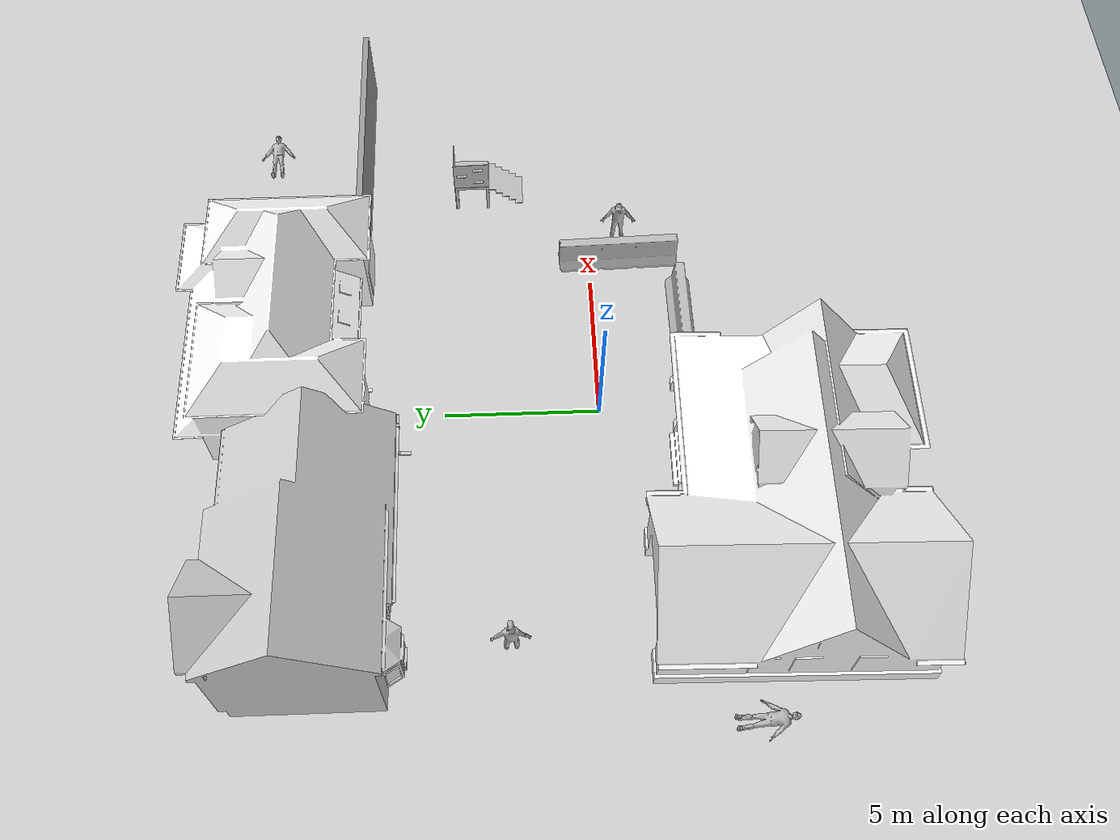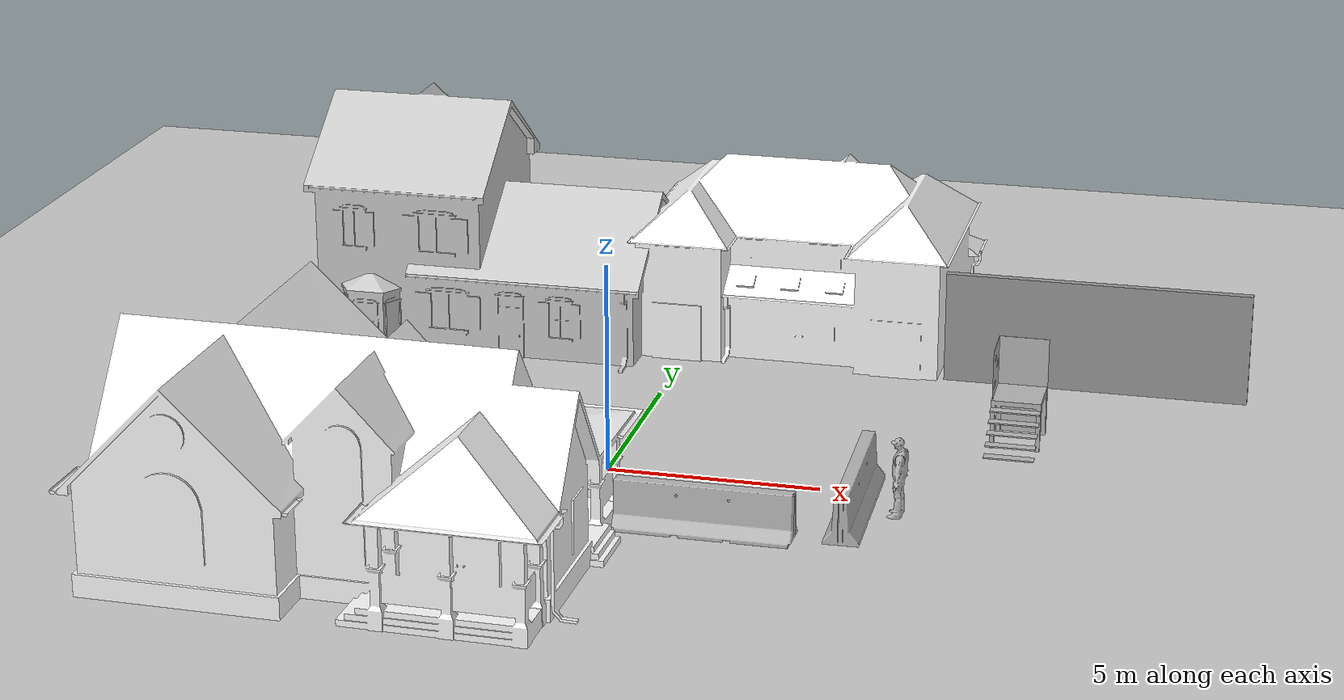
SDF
<sdf version="1.6">
 <world name="default">
  <light name="sun" type="directional">
   <pose>0 0 10 0 -0 0</pose>
   <diffuse>0.8 0.8 0.8 1</diffuse>
   <specular>0.2 0.2 0.2 1</specular>
   <attenuation>
    <range>1000</range>
    <constant>0.9</constant>
    <linear>0.01</linear>
    <quadratic>0.001</quadratic>
   </attenuation>
   <direction>-0.5 0.1 -0.9</direction>
  </light>
  <model name="ground_plane">
   <static>1</static>
   <link name="link">
    <collision name="collision">
     <geometry><plane><normal>0 0 1</normal><size>100 100</size></plane></geometry>
     <surface><friction><ode><mu>100</mu><mu2>50</mu2></ode></friction></surface>
    </collision>
    <visual name="visual">
     <cast_shadows>0</cast_shadows>
     <geometry><plane><normal>0 0 1</normal><size>100 100</size></plane></geometry>
     <material>
      <script><uri>file://media/materials/scripts/gazebo.material</uri><name>Gazebo/Grey</name></script>
     </material>
    </visual>
    <velocity_decay><linear>0</linear><angular>0</angular></velocity_decay>
   </link>
  </model>
  <physics name="default_physics" default="0" type="ode">
   <max_step_size>0.001</max_step_size>
   <real_time_factor>1</real_time_factor>
   <real_time_update_rate>1000</real_time_update_rate>
  </physics>
  <scene><ambient>0.4 0.4 0.4 1</ambient><background>0.7 0.7 0.7 1</background><shadows>1</shadows></scene>
  <model name="House 3">
   <static>1</static>
   <link name="link">
    <collision name="collision">
     <geometry><mesh><uri>model://house_3/meshes/house_3.dae</uri><scale>1 1 1</scale></mesh></geometry>
    </collision>
    <visual name="visual">
     <geometry><mesh><uri>model://house_3/meshes/house_3.dae</uri><scale>1 1 1</scale></mesh></geometry>
     <material>
      <script>
       <uri>model://house_3/materials/scripts</uri>
       <uri>model://house_3/materials/textures</uri>
       <uri>model://house_1/materials/textures</uri>
       <name>House_3/Diffuse</name>
      </script>
      <shader type="normal_map_object_space">
       <normal_map>model://house_1/materials/textures/House_1_Normal.png</normal_map>
      </shader>
     </material>
    </visual>
    <velocity_decay><linear>0</linear><angular>0</angular></velocity_decay>
   </link>
   <pose>-5 9 0 0 -0 0</pose>
  </model>
  <model name="House 2">
   <static>1</static>
   <link name="link">
    <collision name="collision">
     <geometry><mesh><uri>model://house_2/meshes/house_2.dae</uri><scale>1 1 1</scale></mesh></geometry>
    </collision>
    <visual name="visual">
     <geometry><mesh><uri>model://house_2/meshes/house_2.dae</uri><scale>1 1 1</scale></mesh></geometry>
     <material>
      <script>
       <uri>model://house_2/materials/scripts</uri>
       <uri>model://house_2/materials/textures</uri>
       <uri>model://house_1/materials/textures</uri>
       <name>House_2/Diffuse</name>
      </script>
      <shader type="normal_map_object_space">
       <normal_map>model://house_1/materials/textures/House_1_Normal.png</normal_map>
      </shader>
     </material>
    </visual>
    <velocity_decay><linear>0</linear><angular>0</angular></velocity_decay>
   </link>
   <pose>2 10 0 0 -0 0</pose>
  </model>
  <model name="House 1">
   <static>1</static>
   <link name="link">
    <collision name="collision">
     <geometry><mesh><uri>model://house_1/meshes/house_1.dae</uri><scale>1 1 1</scale></mesh></geometry>
    </collision>
    <visual name="visual">
     <geometry><mesh><uri>model://house_1/meshes/house_1.dae</uri><scale>1 1 1</scale></mesh></geometry>
     <material>
      <script>
       <uri>model://house_1/materials/scripts</uri>
       <uri>model://house_1/materials/textures</uri>
       <name>House_1/Diffuse</name>
      </script>
      <shader type="normal_map_object_space"><normal_map>House_1_Normal.png</normal_map></shader>
     </material>
    </visual>
    <velocity_decay><linear>0</linear><angular>0</angular></velocity_decay>
   </link>
   <pose>-4.18156 -5.60557 0 0 -0 3.12318</pose>
  </model>
  <model name="jersey_barrier">
   <static>1</static>
   <link name="link">
    <visual name="visual">
     <geometry>
      <mesh><uri>model://jersey_barrier/meshes/jersey_barrier.dae</uri><scale>1 1 1</scale></mesh>
     </geometry>
    </visual>
    <collision name="upright">
     <pose>0 0 0.5715 0 -0 0</pose>
     <geometry><box><size>4.06542 0.3063 1.143</size></box></geometry>
    </collision>
    <collision name="base">
     <pose>0 0 0.032258 0 -0 0</pose>
     <geometry><box><size>4.06542 0.8107 0.064516</size></box></geometry>
    </collision>
    <collision name="base2">
     <pose>0 0 0.1 0 -0 0</pose>
     <geometry><box><size>4.06542 0.65 0.1</size></box></geometry>
    </collision>
    <collision name="base3">
     <pose>0 0 0.2 0 -0 0</pose>
     <geometry><box><size>4.06542 0.5 0.1</size></box></geometry>
    </collision>
    <collision name="left-angle">
     <pose>0 -0.224 0.2401 0.9 -0 0</pose>
     <geometry><box><size>4.06542 0.5 0.064516</size></box></geometry>
    </collision>
    <collision name="right-angle">
     <pose>0 0.224 0.2401 -0.9 0 0</pose>
     <geometry><box><size>4.06542 0.5 0.064516</size></box></geometry>
    </collision>
    <velocity_decay><linear>0</linear><angular>0</angular></velocity_decay>
   </link>
   <pose>3 -3 0 0 -0 0</pose>
  </model>
  <model name="jersey_barrier_0">
   <static>1</static>
   <link name="link">
    <visual name="visual">
     <geometry>
      <mesh><uri>model://jersey_barrier/meshes/jersey_barrier.dae</uri><scale>1 1 1</scale></mesh>
     </geometry>
    </visual>
    <collision name="upright">
     <pose>0 0 0.5715 0 -0 0</pose>
     <geometry><box><size>4.06542 0.3063 1.143</size></box></geometry>
    </collision>
    <collision name="base">
     <pose>0 0 0.032258 0 -0 0</pose>
     <geometry><box><size>4.06542 0.8107 0.064516</size></box></geometry>
    </collision>
    <collision name="base2">
     <pose>0 0 0.1 0 -0 0</pose>
     <geometry><box><size>4.06542 0.65 0.1</size></box></geometry>
    </collision>
    <collision name="base3">
     <pose>0 0 0.2 0 -0 0</pose>
     <geometry><box><size>4.06542 0.5 0.1</size></box></geometry>
    </collision>
    <collision name="left-angle">
     <pose>0 -0.224 0.2401 0.9 -0 0</pose>
     <geometry><box><size>4.06542 0.5 0.064516</size></box></geometry>
    </collision>
    <collision name="right-angle">
     <pose>0 0.224 0.2401 -0.9 0 0</pose>
     <geometry><box><size>4.06542 0.5 0.064516</size></box></geometry>
    </collision>
    <velocity_decay><linear>0</linear><angular>0</angular></velocity_decay>
   </link>
   <pose>6 -1 0 0 -0 1.6</pose>
  </model>
  <model name="grey_wall">
   <static>1</static>
   <link name="link">
    <pose>0 0 1.4 0 -0 0</pose>
    <collision name="collision"><geometry><box><size>7.5 0.2 2.8</size></box></geometry></collision>
    <visual name="visual">
     <cast_shadows>0</cast_shadows>
     <geometry><box><size>7.5 0.2 2.8</size></box></geometry>
     <material>
      <script>
       <uri>model://grey_wall/materials/scripts</uri>
       <uri>model://grey_wall/materials/textures</uri>
       <name>vrc/grey_wall</name>
      </script>
     </material>
    </visual>
    <velocity_decay><linear>0</linear><angular>0</angular></velocity_decay>
   </link>
   <pose>10.402 7.71769 0 0 -0 0</pose>
  </model>
  <model name="nist_stairs_120">
   <static>1</static>
   <link name="nist_stairs_120_link">
    <collision name="collision">
     <geometry>
      <mesh><uri>model://nist_stairs_120/meshes/nist_stairs_120.dae</uri><scale>1 1 1</scale></mesh>
     </geometry>
    </collision>
    <visual name="visual">
     <geometry>
      <mesh><uri>model://nist_stairs_120/meshes/nist_stairs_120.dae</uri><scale>1 1 1</scale></mesh>
     </geometry>
    </visual>
    <velocity_decay><linear>0</linear><angular>0</angular></velocity_decay>
   </link>
   <pose>9.01164 2.82223 0 0 -0 0</pose>
  </model>
  <model name="worker1">
   <static>1</static>
   <link name="worker1">
    <collision name="collision">
     <geometry><mesh><uri>model://worker1/worker1.dae</uri><scale>1 1 1</scale></mesh></geometry>
    </collision>
    <visual name="visual">
     <geometry><mesh><uri>model://worker1/worker1.dae</uri><scale>1 1 1</scale></mesh></geometry>
    </visual>
    <velocity_decay><linear>0</linear><angular>0</angular></velocity_decay>
   </link>
   <pose>7.06453 -1.04714 0 0 -0 1.54531</pose>
  </model>
  <model name="nist_elevated_floor_120">
   <static>1</static>
   <link name="nist_elevated_floor_120">
    <collision name="collision">
     <geometry>
      <mesh><uri>model://nist_elevated_floor_120/meshes/nist_elevated_floor_120.dae</uri><scale>1 1 1</scale></mesh>
     </geometry>
    </collision>
    <visual name="visual">
     <geometry>
      <mesh><uri>model://nist_elevated_floor_120/meshes/nist_elevated_floor_120.dae</uri><scale>1 1 1</scale></mesh>
     </geometry>
    </visual>
    <velocity_decay><linear>0</linear><angular>0</angular></velocity_decay>
   </link>
   <pose>9 4 0 0 -0 0</pose>
  </model>
  <model name="nist_maze_wall_240">
   <static>1</static>
   <link name="nist__maze_wall_240_link">
    <collision name="collision">
     <geometry>
      <mesh><uri>model://nist_maze_wall_240/meshes/nist_maze_wall_240.dae</uri><scale>1 1 1</scale></mesh>
     </geometry>
    </collision>
    <visual name="visual">
     <geometry>
      <mesh><uri>model://nist_maze_wall_240/meshes/nist_maze_wall_240.dae</uri><scale>1 1 1</scale></mesh>
     </geometry>
    </visual>
    <velocity_decay><linear>0</linear><angular>0</angular></velocity_decay>
   </link>
   <pose>9 4 0 0 -0 0</pose>
  </model>
  <model name="nist">
   <static>1</static>
   <link name="nist_maze_wall_triple_holes_120_link">
    <collision name="collision">
     <geometry>
      <mesh>
       <uri>model://nist_maze_wall_triple_holes_120/meshes/nist_maze_wall_triple_holes_120.dae</uri>
       <scale>1 1 1</scale>
      </mesh>
     </geometry>
    </collision>
    <visual name="visual">
     <geometry>
      <mesh>
       <uri>model://nist_maze_wall_triple_holes_120/meshes/nist_maze_wall_triple_holes_120.dae</uri>
       <scale>1 1 1</scale>
      </mesh>
     </geometry>
    </visual>
    <velocity_decay><linear>0</linear><angular>0</angular></velocity_decay>
   </link>
   <pose>9.02578 4.02961 1.2 0 -0 1.6</pose>
  </model>
  <gravity>0 0 -9.8</gravity>
  <magnetic_field>6e-06 2.3e-05 -4.2e-05</magnetic_field>
  <atmosphere type="adiabatic"/>
  <spherical_coordinates>
   <surface_model>EARTH_WGS84</surface_model>
   <latitude_deg>0</latitude_deg>
   <longitude_deg>0</longitude_deg>
   <elevation>0</elevation>
   <heading_deg>0</heading_deg>
  </spherical_coordinates>
  <model name="worker1_clone">
   <static>1</static>
   <link name="worker1">
    <collision name="collision">
     <geometry><mesh><uri>model://worker1/worker1.dae</uri><scale>1 1 1</scale></mesh></geometry>
    </collision>
    <visual name="visual">
     <geometry><mesh><uri>model://worker1/worker1.dae</uri><scale>1 1 1</scale></mesh></geometry>
    </visual>
    <velocity_decay><linear>0</linear><angular>0</angular></velocity_decay>
   </link>
   <pose>-7.80217 3.03516 0 0 0 -1.5434</pose>
  </model>
  <model name="worker1_clone_clone">
   <static>1</static>
   <link name="worker1">
    <collision name="collision">
     <geometry><mesh><uri>model://worker1/worker1.dae</uri><scale>1 1 1</scale></mesh></geometry>
    </collision>
    <visual name="visual">
     <geometry><mesh><uri>model://worker1/worker1.dae</uri><scale>1 1 1</scale></mesh></geometry>
    </visual>
    <velocity_decay><linear>0</linear><angular>0</angular></velocity_decay>
   </link>
   <pose>-10.2593 -3.33056 0.02402 1.58116 0.000282 0.088805</pose>
  </model>
  <model name="worker1_clone_clone_clone">
   <static>1</static>
   <link name="worker1">
    <collision name="collision">
     <geometry><mesh><uri>model://worker1/worker1.dae</uri><scale>1 1 1</scale></mesh></geometry>
    </collision>
    <visual name="visual">
     <geometry><mesh><uri>model://worker1/worker1.dae</uri><scale>1 1 1</scale></mesh></geometry>
    </visual>
    <velocity_decay><linear>0</linear><angular>0</angular></velocity_decay>
   </link>
   <pose>10.0316 11.0804 0.02402 1.57142 -0.010349 1.62685</pose>
  </model>
 </world>
</sdf>
